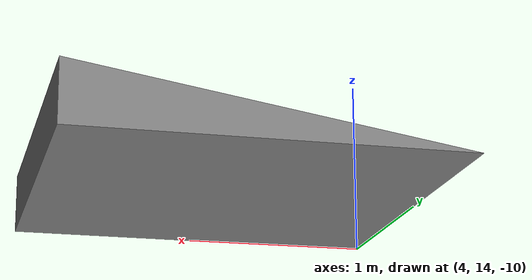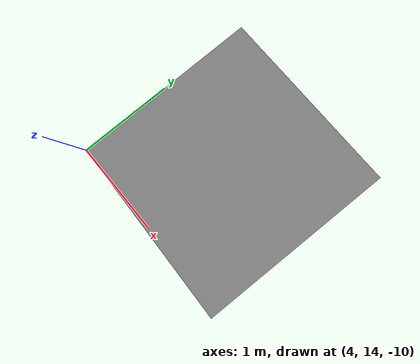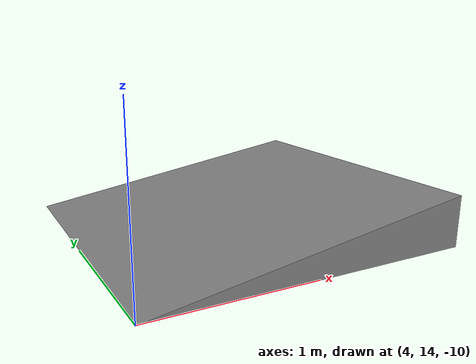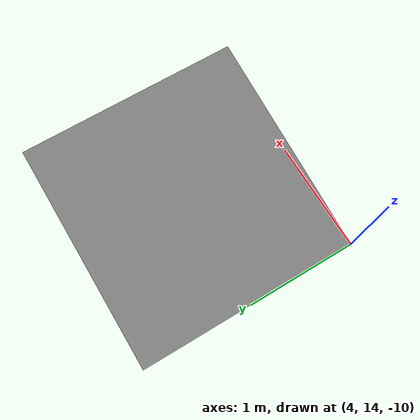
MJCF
<mujoco model="ramp (v0.1)">
    <compiler inertiafromgeom="true" angle="degree"/>
	<option	timestep="0.01" gravity="0 0 -9.81"/>

	<asset>
		<!--material name="MatGnd" specular="1" shininess=".3" reflectance="0" rgba="1 1 1 1" texture="PixelGround" /-->
		<!--material name="MatSpot" specular="1" shininess="0" reflectance="0.5" rgba="1 1 1 1"/-->
		<!--material name="MatInit" rgba=".8 0 0 1"/-->
		<mesh name="ramp-blender" file="ramp-blender.stl" scale="1 1 .8"/>
	</asset>

	<default>
		<geom contype="1" conaffinity="1"/>
	</default>

    <worldbody>
		<body name="ramp1" pos="5 15 -10">
			<geom name="ramp1geom" type="mesh" pos="0 0 0" mesh="ramp-blender"/>
		</body>
		<body name="ramp2" pos="5 15 -10">
			<geom name="ramp2geom" type="mesh" pos="0 0 0" mesh="ramp-blender"/>
		</body>
		<body name="ramp3" pos="5 15 -10">
			<geom name="ramp3geom" type="mesh" pos="0 0 0" mesh="ramp-blender"/>
		</body>
		<body name="ramp4" pos="5 15 -10">
			<geom name="ramp5geom" type="mesh" pos="0 0 0" mesh="ramp-blender"/>
		</body>
	</worldbody>
</mujoco>
